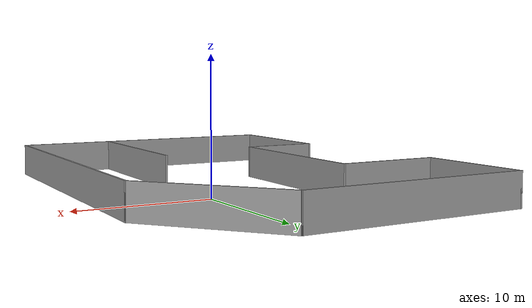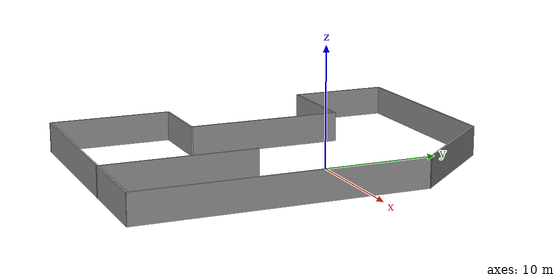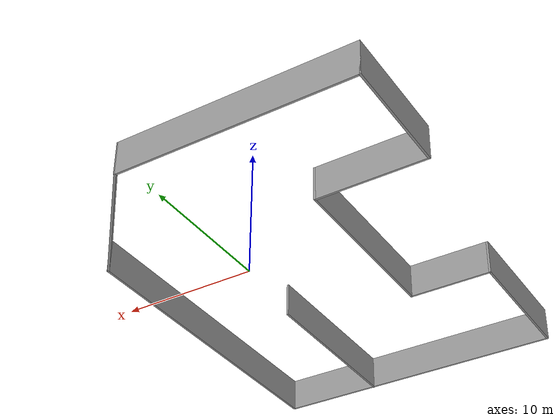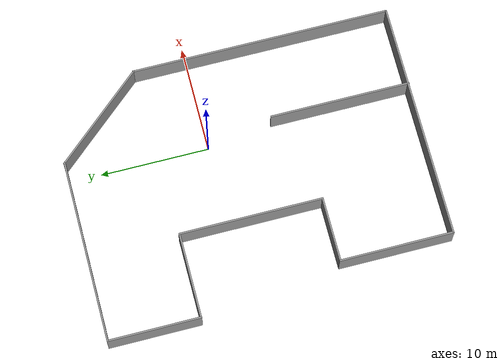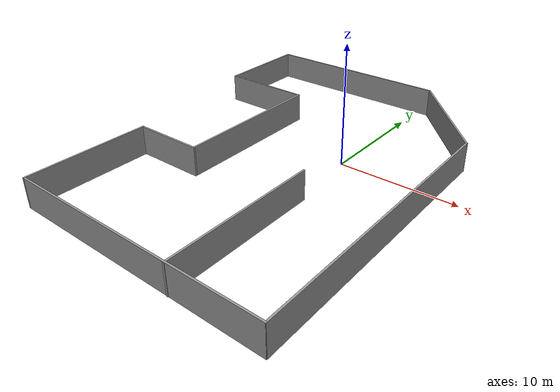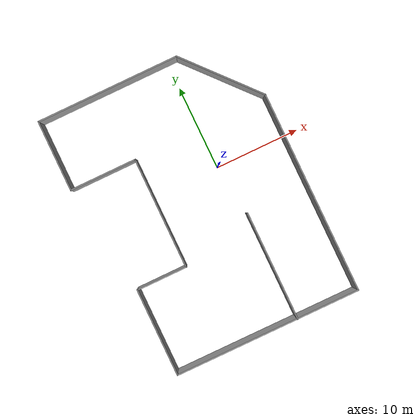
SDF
<?xml version='1.0'?>
<sdf version='1.7'>
  <model name='test_environment'>
    <pose>-3.80625 -2.99587 0 0 -0 0</pose>
    <link name='Wall_12'>
      <collision name='Wall_12_Collision'>
        <geometry>
          <box>
            <size>13.25 0.15 2.5</size>
          </box>
        </geometry>
        <pose>0 0 1.25 0 -0 0</pose>
      </collision>
      <visual name='Wall_12_Visual'>
        <pose>0 0 1.25 0 -0 0</pose>
        <geometry>
          <box>
            <size>13.25 0.15 2.5</size>
          </box>
        </geometry>
        <material>
          <script>
            <uri>file://media/materials/scripts/gazebo.material</uri>
            <name>Gazebo/Grey</name>
          </script>
          <ambient>1 1 1 1</ambient>
        </material>
        <meta>
          <layer>0</layer>
        </meta>
      </visual>
      <pose>-4.11118 1.03168 0 0 -0 -1.5708</pose>
    </link>
    <link name='Wall_15'>
      <collision name='Wall_15_Collision'>
        <geometry>
          <box>
            <size>8 0.15 2.5</size>
          </box>
        </geometry>
        <pose>0 0 1.25 0 -0 0</pose>
      </collision>
      <visual name='Wall_15_Visual'>
        <pose>0 0 1.25 0 -0 0</pose>
        <geometry>
          <box>
            <size>8 0.15 2.5</size>
          </box>
        </geometry>
        <material>
          <script>
            <uri>file://media/materials/scripts/gazebo.material</uri>
            <name>Gazebo/Grey</name>
          </script>
          <ambient>1 1 1 1</ambient>
        </material>
        <meta>
          <layer>0</layer>
        </meta>
      </visual>
      <pose>-8.03618 7.58168 0 0 -0 3.14159</pose>
    </link>
    <link name='Wall_16'>
      <collision name='Wall_16_Collision'>
        <geometry>
          <box>
            <size>8.5 0.15 2.5</size>
          </box>
        </geometry>
        <pose>0 0 1.25 0 -0 0</pose>
      </collision>
      <visual name='Wall_16_Visual'>
        <pose>0 0 1.25 0 -0 0</pose>
        <geometry>
          <box>
            <size>8.5 0.15 2.5</size>
          </box>
        </geometry>
        <material>
          <script>
            <uri>file://media/materials/scripts/gazebo.material</uri>
            <name>Gazebo/Grey</name>
          </script>
          <ambient>1 1 1 1</ambient>
        </material>
        <meta>
          <layer>0</layer>
        </meta>
      </visual>
      <pose>-11.9612 11.7567 0 0 -0 1.5708</pose>
    </link>
    <link name='Wall_17'>
      <collision name='Wall_17_Collision'>
        <geometry>
          <box>
            <size>17 0.15 2.5</size>
          </box>
        </geometry>
        <pose>0 0 1.25 0 -0 0</pose>
      </collision>
      <visual name='Wall_17_Visual'>
        <pose>0 0 1.25 0 -0 0</pose>
        <geometry>
          <box>
            <size>17 0.15 2.5</size>
          </box>
        </geometry>
        <material>
          <script>
            <uri>file://media/materials/scripts/gazebo.material</uri>
            <name>Gazebo/Grey</name>
          </script>
          <ambient>1 1 1 1</ambient>
        </material>
        <meta>
          <layer>0</layer>
        </meta>
      </visual>
      <pose>-3.53618 15.9317 0 0 -0 0</pose>
    </link>
    <link name='Wall_18'>
      <collision name='Wall_18_Collision'>
        <geometry>
          <box>
            <size>10.8137 0.15 2.5</size>
          </box>
        </geometry>
        <pose>0 0 1.25 0 -0 0</pose>
      </collision>
      <visual name='Wall_18_Visual'>
        <pose>0 0 1.25 0 -0 0</pose>
        <geometry>
          <box>
            <size>10.8137 0.15 2.5</size>
          </box>
        </geometry>
        <material>
          <script>
            <uri>file://media/materials/scripts/gazebo.material</uri>
            <name>Gazebo/Grey</name>
          </script>
          <ambient>1 1 1 1</ambient>
        </material>
        <meta>
          <layer>0</layer>
        </meta>
      </visual>
      <pose>8.40958 11.9276 0 0 -0 -0.849541</pose>
    </link>
    <link name='Wall_21'>
      <collision name='Wall_21_Collision'>
        <geometry>
          <box>
            <size>6.00855 0.15 2.5</size>
          </box>
        </geometry>
        <pose>0 0 1.25 0 -0 0</pose>
      </collision>
      <visual name='Wall_21_Visual'>
        <pose>0 0 1.25 0 -0 0</pose>
        <geometry>
          <box>
            <size>6.00855 0.15 2.5</size>
          </box>
        </geometry>
        <material>
          <script>
            <uri>file://media/materials/scripts/gazebo.material</uri>
            <name>Gazebo/Grey</name>
          </script>
          <ambient>1 1 1 1</ambient>
        </material>
        <meta>
          <layer>0</layer>
        </meta>
      </visual>
      <pose>-7.04045 -5.51832 0 0 -0 3.14159</pose>
    </link>
    <link name='Wall_22'>
      <collision name='Wall_22_Collision'>
        <geometry>
          <box>
            <size>10.5 0.15 2.5</size>
          </box>
        </geometry>
        <pose>0 0 1.25 0 -0 0</pose>
      </collision>
      <visual name='Wall_22_Visual'>
        <pose>0 0 1.25 0 -0 0</pose>
        <geometry>
          <box>
            <size>10.5 0.15 2.5</size>
          </box>
        </geometry>
        <material>
          <script>
            <uri>file://media/materials/scripts/gazebo.material</uri>
            <name>Gazebo/Grey</name>
          </script>
          <ambient>1 1 1 1</ambient>
        </material>
        <meta>
          <layer>0</layer>
        </meta>
      </visual>
      <pose>-10.0508 -10.6933 0 0 -0 -1.5708</pose>
    </link>
    <link name='Wall_23'>
      <collision name='Wall_23_Collision'>
        <geometry>
          <box>
            <size>22.014 0.15 2.5</size>
          </box>
        </geometry>
        <pose>0 0 1.25 0 -0 0</pose>
      </collision>
      <visual name='Wall_23_Visual'>
        <pose>0 0 1.25 0 -0 0</pose>
        <geometry>
          <box>
            <size>22.014 0.15 2.5</size>
          </box>
        </geometry>
        <material>
          <script>
            <uri>file://media/materials/scripts/gazebo.material</uri>
            <name>Gazebo/Grey</name>
          </script>
          <ambient>1 1 1 1</ambient>
        </material>
        <meta>
          <layer>0</layer>
        </meta>
      </visual>
      <pose>0.962185 -15.9117 0 0 -0 -0.003972</pose>
    </link>
    <link name='Wall_26'>
      <collision name='Wall_26_Collision'>
        <geometry>
          <box>
            <size>13 0.15 2.5</size>
          </box>
        </geometry>
        <pose>0 0 1.25 0 -0 0</pose>
      </collision>
      <visual name='Wall_26_Visual'>
        <pose>0 0 1.25 0 -0 0</pose>
        <geometry>
          <box>
            <size>13 0.15 2.5</size>
          </box>
        </geometry>
        <material>
          <script>
            <uri>file://media/materials/scripts/gazebo.material</uri>
            <name>Gazebo/Grey</name>
          </script>
          <ambient>1 1 1 1</ambient>
        </material>
        <meta>
          <layer>0</layer>
        </meta>
      </visual>
      <pose>4.53998 -9.53753 0 0 -0 1.5708</pose>
    </link>
    <link name='Wall_9'>
      <collision name='Wall_9_Collision'>
        <geometry>
          <box>
            <size>24 0.15 2.5</size>
          </box>
        </geometry>
        <pose>0 0 1.25 0 -0 0</pose>
      </collision>
      <visual name='Wall_9_Visual'>
        <pose>0 0 1.25 0 -0 0</pose>
        <geometry>
          <box>
            <size>24 0.15 2.5</size>
          </box>
        </geometry>
        <material>
          <script>
            <uri>file://media/materials/scripts/gazebo.material</uri>
            <name>Gazebo/Grey</name>
          </script>
          <ambient>1 1 1 1</ambient>
        </material>
        <meta>
          <layer>0</layer>
        </meta>
      </visual>
      <pose>11.9303 -4.00148 0 0 -0 1.5708</pose>
    </link>
    <static>1</static>
  </model>
</sdf>
